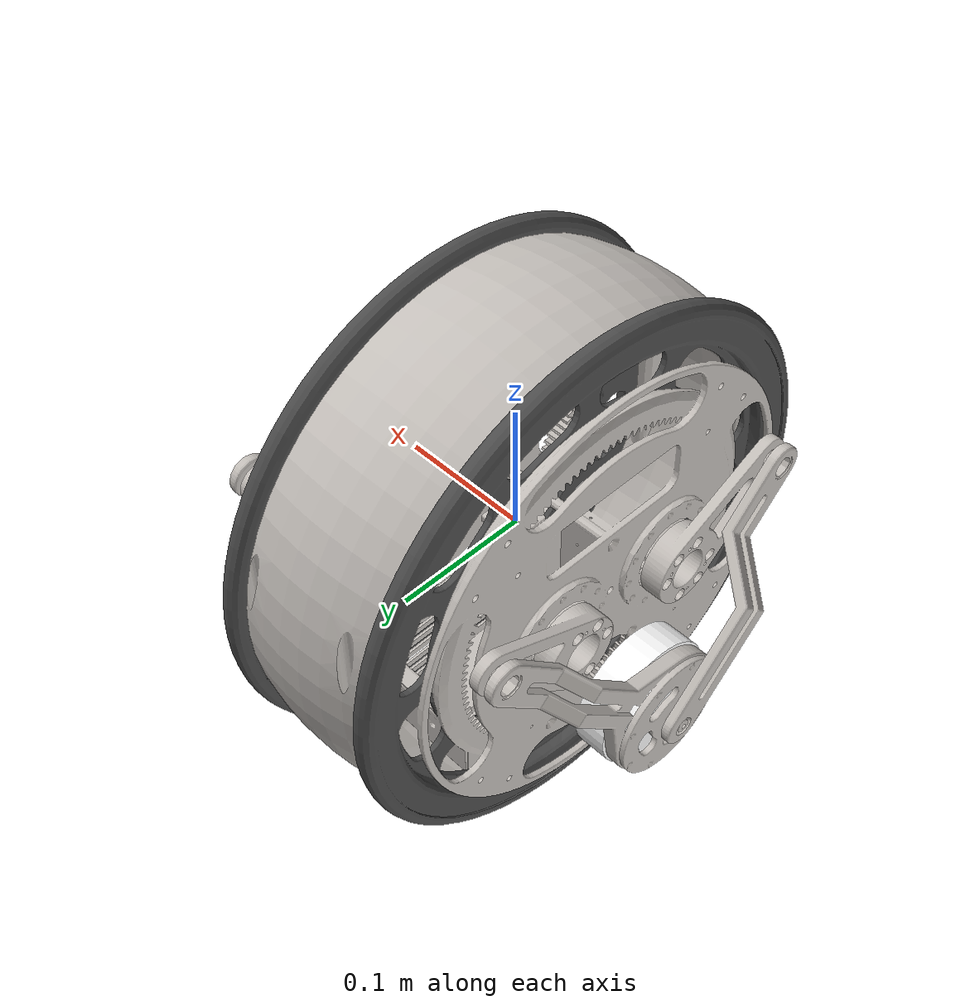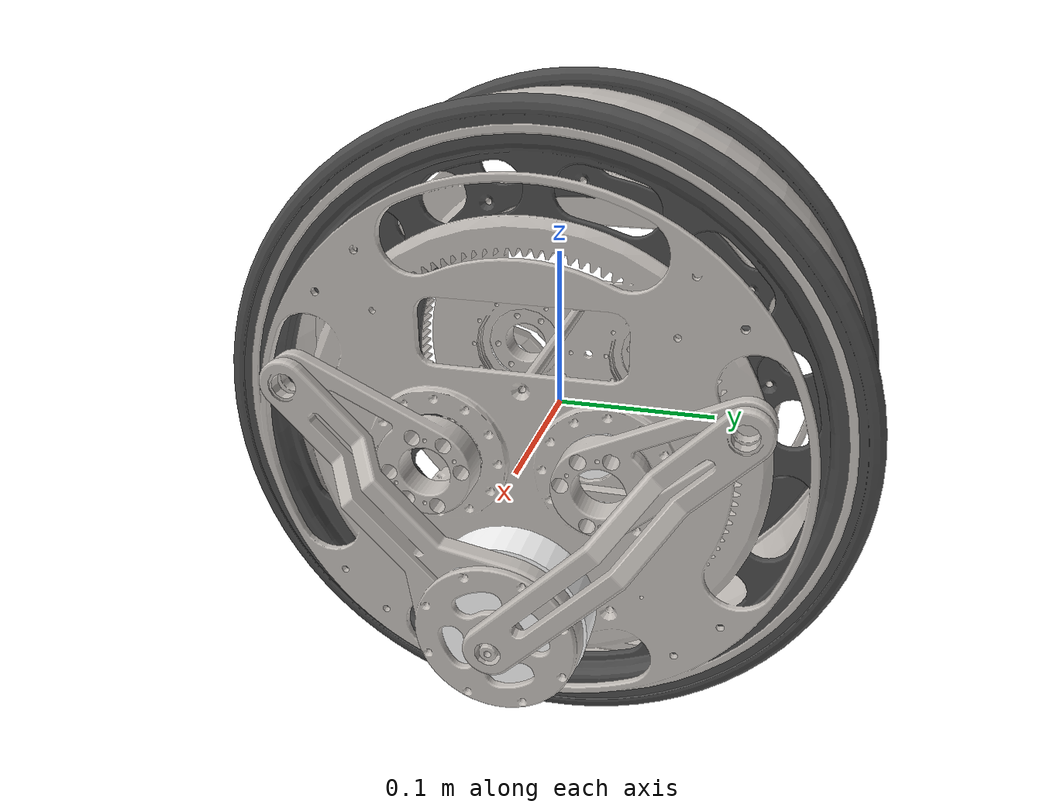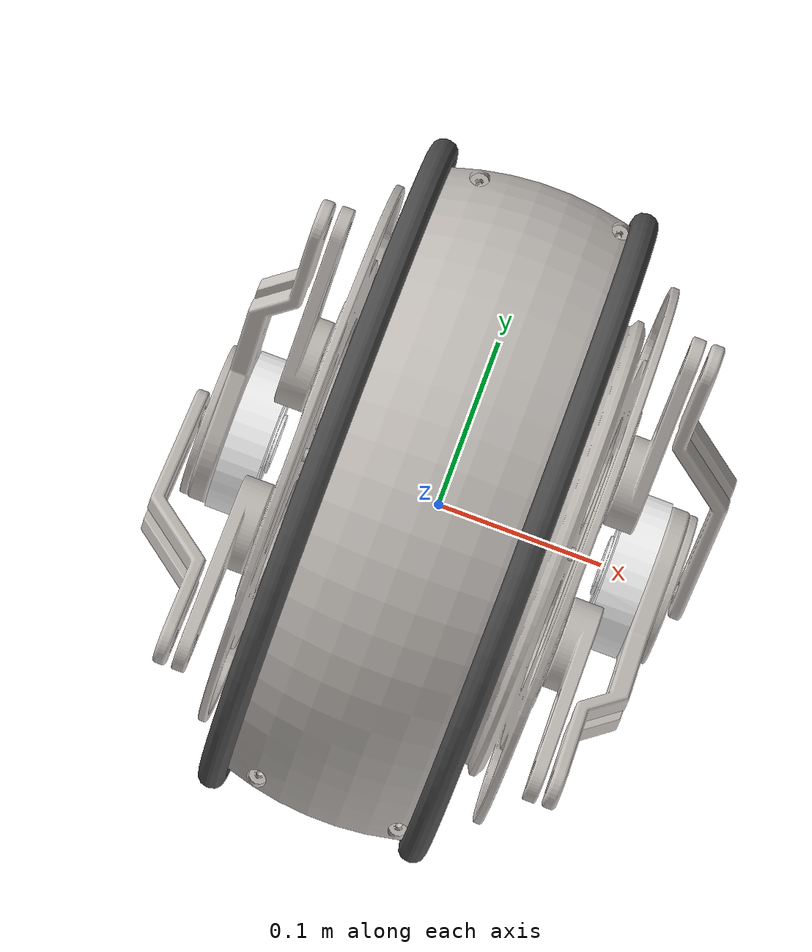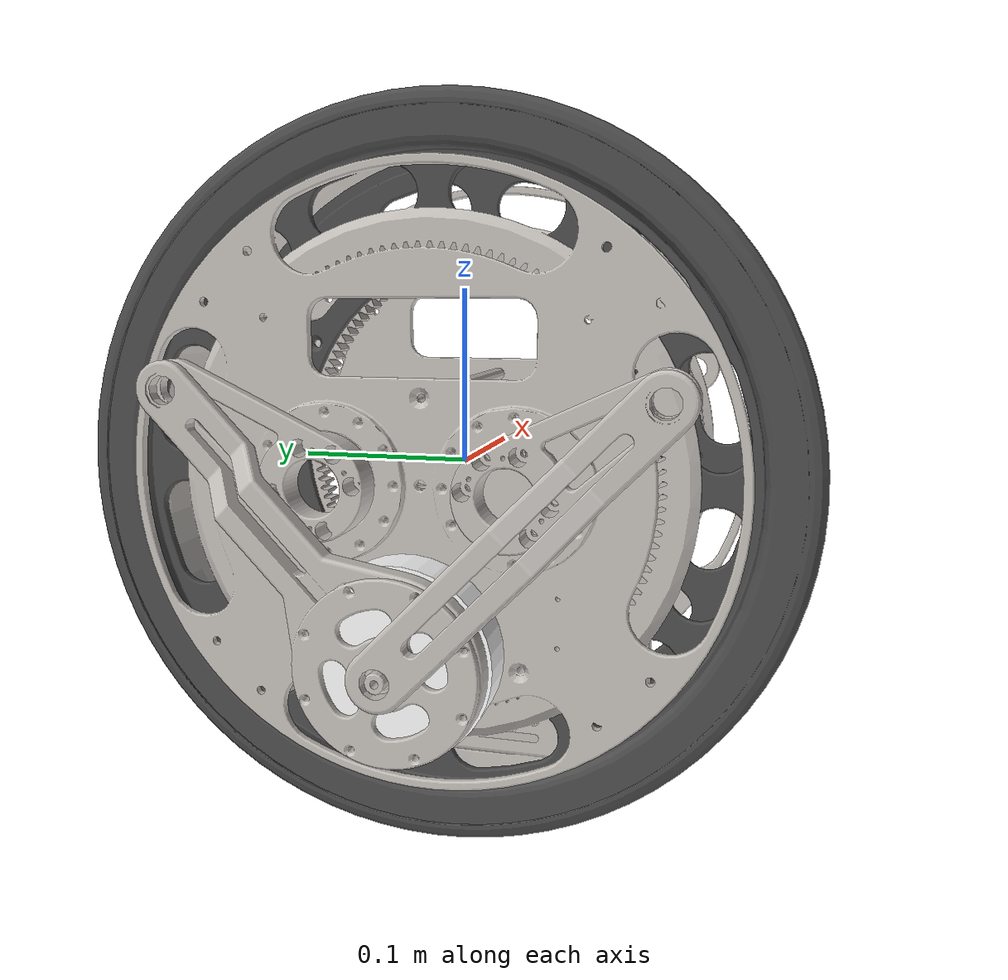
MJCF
<mujoco model="yuquan">
    <compiler angle="radian" meshdir="/home/cherish/yuquan-note/mujoco-model/yuquan_urdf/meshes/" />
    <size njmax="500" nconmax="100" />
    <asset>
        <mesh name="base_link" file="base_link.STL" />
        <mesh name="left_left_small_leg" file="left_left_small_leg.STL" />
        <mesh name="left_left_big_leg" file="left_left_big_leg.STL" />
        <mesh name="left_wheel" file="left_wheel.STL" />
        <mesh name="left_right_small_leg" file="left_right_small_leg.STL" />
        <mesh name="left_right_big_leg" file="left_right_big_leg.STL" />
        <mesh name="right_left_small_leg" file="right_left_small_leg.STL" />
        <mesh name="right_left_big_leg" file="right_left_big_leg.STL" />
        <mesh name="right_wheel" file="right_wheel.STL" />
        <mesh name="right_right_small_leg" file="right_right_small_leg.STL" />
        <mesh name="right_right_big_leg" file="right_right_big_leg.STL" />
        <mesh name="left_ball_wheel" file="left_ball_wheel.STL" />
        <mesh name="right_ball_wheel" file="right_ball_wheel.STL" />
    </asset>
    <worldbody>
        <body name="base_link" pos="0 0 0">
            <inertial pos="-4.6363e-07 -0.0013201 -0.021013" quat="0.707266 0.706947 1.11098e-07 -8.10418e-06" mass="2.793" diaginertia="0.039104 0.026788 0.015393" />
            <joint name="floating_base" type="free" />
            <geom type="mesh" contype="0" conaffinity="0" group="1" rgba="0.77647 0.75686 0.73725 1" mesh="base_link" />
            <geom type="mesh" rgba="0.77647 0.75686 0.73725 1" mesh="base_link" />
            <body name="left_left_small_leg" pos="-0.1025 0.05 0" quat="0.20126 -0.67786 -0.201265 0.67786">
                <inertial pos="-3.1799e-08 -0.024068 0.00079523" quat="0.515308 0.484208 -0.484208 0.515308" mass="0.10778" diaginertia="0.000161092 0.00013959 2.60209e-05" />
                <joint name="left_left_joint" pos="0 0 0" axis="0 0 1" limited="true" range="-1.57 1.57" />
                <geom type="mesh" contype="0" conaffinity="0" group="1" rgba="0.77647 0.75686 0.73725 1" mesh="left_left_small_leg" />
                <geom type="mesh" rgba="0.77647 0.75686 0.73725 1" mesh="left_left_small_leg" />
                <body name="left_left_big_leg" pos="0 -0.09 0.0396" quat="-3.65046e-06 0.993808 -0.11111 4.0813e-07">
                    <inertial pos="1.41705e-12 -0.138445 0.00620447" quat="0.479771 0.519442 -0.519442 0.479771" mass="0.254951" diaginertia="0.000982657 0.000855216 0.000139434" />
                    <joint name="joint0" pos="0 0 0" axis="0 0 1" />
                    <geom type="mesh" contype="0" conaffinity="0" group="1" rgba="0.776471 0.756863 0.737255 1" mesh="left_left_big_leg" />
                    <geom type="mesh" rgba="0.776471 0.756863 0.737255 1" mesh="left_left_big_leg" />
                    <body name="left_wheel" pos="0 -0.18 0.001" quat="0.693519 0.13795 0.693521 -0.13795">
                        <inertial pos="-0.020163 7.3609e-05 3.049e-05" quat="0.980929 0.194363 0.000258227 -0.0012933" mass="0.23078" diaginertia="0.000248421 0.000146207 0.000145602" />
                        <joint name="left_wheel_joint" pos="0 0 0" axis="1 0 0" />
                        <geom type="mesh" contype="0" conaffinity="0" group="1" rgba="1 1 1 1" mesh="left_wheel" />
                        <geom type="mesh" rgba="1 1 1 1" mesh="left_wheel" />
                    </body>
                </body>
            </body>
            <body name="left_right_small_leg" pos="-0.1025 -0.05 0" quat="0.677859 -0.201262 -0.67786 0.201262">
                <inertial pos="-3.42171e-08 -0.0240684 0.000795233" quat="0.515308 0.484208 -0.484208 0.515308" mass="0.10778" diaginertia="0.000161092 0.000139586 2.60213e-05" />
                <joint name="left_right_joint" pos="0 0 0" axis="1 0 0" limited="true" range="-1.57 1.57" />
                <geom type="mesh" contype="0" conaffinity="0" group="1" rgba="0.776471 0.756863 0.737255 1" mesh="left_right_small_leg" />
                <geom type="mesh" rgba="0.776471 0.756863 0.737255 1" mesh="left_right_small_leg" />
                <body name="left_right_big_leg" pos="0 -0.09 0.0116" quat="0.111116 0 0 -0.993807">
                    <inertial pos="0 -0.0887597 0.024852" quat="0.559067 0.432948 -0.432948 0.559067" mass="0.11097" diaginertia="0.000399813 0.000395694 1.62694e-05" />
                    <joint name="joint1" pos="0 0 0" axis="1 0 0" />
                    <geom type="mesh" contype="0" conaffinity="0" group="1" rgba="0.776471 0.756863 0.737255 1" mesh="left_right_big_leg" />
                    <geom type="mesh" rgba="0.776471 0.756863 0.737255 1" mesh="left_right_big_leg" />
                </body>
            </body>
            <body name="right_left_small_leg" pos="0.1025 -0.05 0" quat="0.677859 -0.201262 0.67786 -0.201262">
                <inertial pos="-3.1799e-08 -0.024068 0.00079523" quat="0.515308 0.484208 -0.484208 0.515308" mass="0.10778" diaginertia="0.000161092 0.00013959 2.60209e-05" />
                <joint name="right_left_joint" pos="0 0 0" axis="1 0 0" limited="true" range="-1.57 1.57" />
                <geom type="mesh" contype="0" conaffinity="0" group="1" rgba="0.77647 0.75686 0.73725 1" mesh="right_left_small_leg" />
                <geom type="mesh" rgba="0.77647 0.75686 0.73725 1" mesh="right_left_small_leg" />
                <body name="right_left_big_leg" pos="0 -0.09 0.0396" quat="-3.65046e-06 0.993808 -0.11111 4.0813e-07">
                    <inertial pos="1.41699e-12 -0.138445 0.00620447" quat="0.479771 0.519442 -0.519442 0.479771" mass="0.254951" diaginertia="0.000982657 0.000855216 0.000139434" />
                    <joint name="joint2" pos="0 0 0" axis="1 0 0" />
                    <geom type="mesh" contype="0" conaffinity="0" group="1" rgba="0.776471 0.756863 0.737255 1" mesh="right_left_big_leg" />
                    <geom type="mesh" rgba="0.776471 0.756863 0.737255 1" mesh="right_left_big_leg" />
                    <body name="right_wheel" pos="0 -0.18 0.2832" quat="0.384279 0.593572 -0.384281 0.593574">
                        <inertial pos="-0.262037 3.26145e-05 -7.26926e-05" quat="0.543438 0.839448 0.00110707 -0.000716687" mass="0.230776" diaginertia="0.000248424 0.000146208 0.000145604" />
                        <joint name="right_wheel_joint" pos="0 0 0" axis="1 0 0" />
                        <geom type="mesh" contype="0" conaffinity="0" group="1" rgba="1 1 1 1" mesh="right_wheel" />
                        <geom type="mesh" rgba="1 1 1 1" mesh="right_wheel" />
                    </body>
                </body>
            </body>
            <body name="right_right_small_leg" pos="0.1025 0.05 0" quat="0.20126 -0.67786 0.201265 -0.67786">
                <inertial pos="-3.42171e-08 -0.0240684 0.000795233" quat="0.515308 0.484208 -0.484208 0.515308" mass="0.10778" diaginertia="0.000161092 0.000139586 2.60213e-05" />
                <joint name="right_right_joint" pos="0 0 0" axis="1 0 0" limited="true" range="-1.57 1.57" />
                <geom type="mesh" contype="0" conaffinity="0" group="1" rgba="0.776471 0.756863 0.737255 1" mesh="right_right_small_leg" />
                <geom type="mesh" rgba="0.776471 0.756863 0.737255 1" mesh="right_right_small_leg" />
                <body name="right_right_big_leg" pos="0 -0.09 0.0116" quat="0.111116 0 0 -0.993807">
                    <inertial pos="0 -0.0887597 0.024852" quat="0.559067 0.432948 -0.432948 0.559067" mass="0.11097" diaginertia="0.000399813 0.000395694 1.62694e-05" />
                    <joint name="joint3" pos="0 0 0" axis="1 0 0" />
                    <geom type="mesh" contype="0" conaffinity="0" group="1" rgba="0.776471 0.756863 0.737255 1" mesh="right_right_big_leg" />
                    <geom type="mesh" rgba="0.776471 0.756863 0.737255 1" mesh="right_right_big_leg" />
                </body>
            </body>
            <body name="left_ball_wheel" pos="0.0065 0 0" quat="0.707105 0.707108 0 0">
                <inertial pos="-0.0719629 0 0" mass="0.806825" diaginertia="0.0251135 0.0125762 0.0125762" />
                <joint name="left_ball_wheel_joint" pos="0 0 0" axis="1 0 0" />
                <geom type="mesh" contype="0" conaffinity="0" group="1" rgba="0.298039 0.298039 0.298039 1" mesh="left_ball_wheel" />
                <geom type="mesh" rgba="0.298039 0.298039 0.298039 1" mesh="left_ball_wheel" />
            </body>
            <body name="right_ball_wheel" pos="-0.0065 0 0" quat="0.707105 0.707108 0 0">
                <inertial pos="-0.0719629 0 0" mass="0.806825" diaginertia="0.0251135 0.0125762 0.0125762" />
                <joint name="right_ball_wheel_joint" pos="0 0 0" axis="1 0 0" />
                <geom type="mesh" contype="0" conaffinity="0" group="1" rgba="0.298039 0.298039 0.298039 1" mesh="right_ball_wheel" />
                <geom type="mesh" rgba="0.298039 0.298039 0.298039 1" mesh="right_ball_wheel" />
            </body>
        </body>
    </worldbody>
</mujoco>
